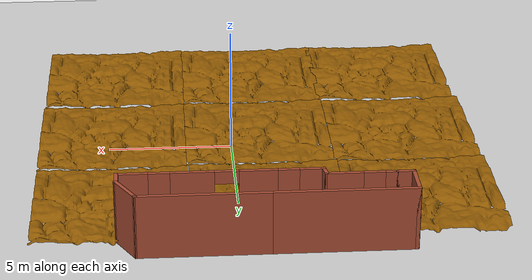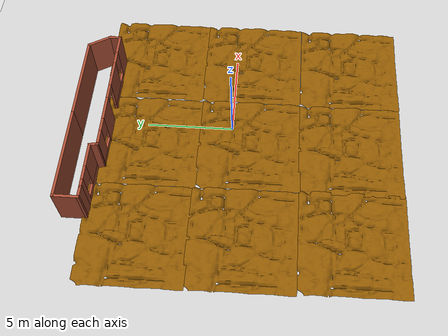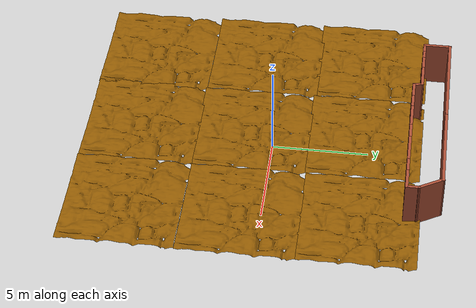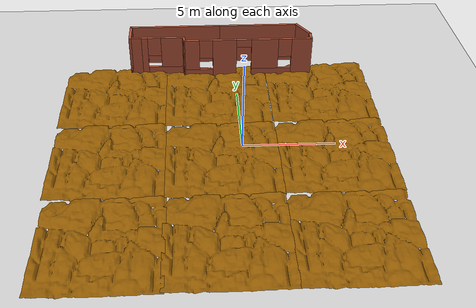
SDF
<sdf version="1.6">
 <world name="default">
  <light name="sun" type="directional">
   <pose>0 0 10 0 -0 0</pose>
   <diffuse>0.8 0.8 0.8 1</diffuse>
   <specular>0.2 0.2 0.2 1</specular>
   <attenuation>
    <range>1000</range>
    <constant>0.9</constant>
    <linear>0.01</linear>
    <quadratic>0.001</quadratic>
   </attenuation>
   <direction>-0.5 0.1 -0.9</direction>
  </light>
  <model name="ground_plane">
   <static>1</static>
   <link name="link">
    <collision name="collision">
     <geometry><plane><normal>0 0 1</normal><size>100 100</size></plane></geometry>
     <surface>
      <contact><collide_bitmask>65535</collide_bitmask></contact>
      <friction><ode><mu>100</mu><mu2>50</mu2></ode></friction>
     </surface>
    </collision>
    <visual name="visual">
     <cast_shadows>0</cast_shadows>
     <geometry><plane><normal>0 0 1</normal><size>100 100</size></plane></geometry>
     <material>
      <script><uri>file://media/materials/scripts/gazebo.material</uri><name>Gazebo/Grey</name></script>
     </material>
    </visual>
   </link>
  </model>
  <gravity>0 0 -9.8</gravity>
  <magnetic_field>6e-06 2.3e-05 -4.2e-05</magnetic_field>
  <atmosphere type="adiabatic"/>
  <physics name="default_physics" default="0" type="ode">
   <max_step_size>0.001</max_step_size>
   <real_time_factor>1</real_time_factor>
   <real_time_update_rate>1000</real_time_update_rate>
  </physics>
  <scene><ambient>0.4 0.4 0.4 1</ambient><background>0.7 0.7 0.7 1</background><shadows>1</shadows></scene>
  <audio><device>default</device></audio>
  <spherical_coordinates>
   <surface_model>EARTH_WGS84</surface_model>
   <latitude_deg>0</latitude_deg>
   <longitude_deg>0</longitude_deg>
   <elevation>0</elevation>
   <heading_deg>0</heading_deg>
  </spherical_coordinates>
  <model name="piedra_prueba_5_0">
   <link name="link_0">
    <inertial>
     <mass>1</mass>
     <inertia>
      <ixx>0.166667</ixx>
      <ixy>0</ixy>
      <ixz>0</ixz>
      <iyy>0.166667</iyy>
      <iyz>0</iyz>
      <izz>0.166667</izz>
     </inertia>
    </inertial>
    <pose>0.000504 0 0.1 0 -0 0</pose>
    <gravity>0</gravity>
    <self_collide>1</self_collide>
    <visual name="visual">
     <pose>0 0 0 1.57 -0 0</pose>
     <geometry>
      <mesh>
       <uri>/home/christyan/catkin_ws_cpr/src/modelos_stl_plantas/roca2.stl</uri>
       <scale>0.01 0.01 0.01</scale>
      </mesh>
     </geometry>
     <material>
      <lighting>1</lighting>
      <script><uri>file://media/materials/scripts/gazebo.material</uri><name>Gazebo/Grey</name></script>
      <shader type="vertex"><normal_map>__default__</normal_map></shader>
      <ambient>0.561 0.349 0.008 1</ambient>
      <diffuse>0.7 0.7 0.7 1</diffuse>
      <specular>0.01 0.01 0.01 1</specular>
      <emissive>0 0 0 1</emissive>
     </material>
    </visual>
    <collision name="collision">
     <max_contacts>1</max_contacts>
     <pose>0 0 0.1 1.57 -0 0</pose>
     <geometry>
      <mesh>
       <uri>/home/christyan/catkin_ws_cpr/src/modelos_stl_plantas/roca2.stl</uri>
       <scale>0.01 0.01 0.01</scale>
      </mesh>
     </geometry>
     <surface>
      <friction>
       <ode><mu>1</mu><mu2>1</mu2><fdir1>0 0 0</fdir1><slip1>0</slip1><slip2>0</slip2></ode>
       <torsional>
        <coefficient>1</coefficient>
        <patch_radius>0</patch_radius>
        <surface_radius>0</surface_radius>
        <use_patch_radius>1</use_patch_radius>
        <ode><slip>0</slip></ode>
       </torsional>
      </friction>
      <bounce><restitution_coefficient>0</restitution_coefficient><threshold>1e+06</threshold></bounce>
      <contact>
       <collide_without_contact>1</collide_without_contact>
       <collide_without_contact_bitmask>1</collide_without_contact_bitmask>
       <collide_bitmask>1</collide_bitmask>
       <ode>
        <soft_cfm>0</soft_cfm>
        <soft_erp>0.2</soft_erp>
        <kp>1e+10</kp>
        <kd>1</kd>
        <max_vel>0</max_vel>
        <min_depth>0</min_depth>
       </ode>
       <bullet>
        <split_impulse>1</split_impulse>
        <split_impulse_penetration_threshold>-0.01</split_impulse_penetration_threshold>
        <soft_cfm>0</soft_cfm>
        <soft_erp>0.2</soft_erp>
        <kp>1e+10</kp>
        <kd>1</kd>
       </bullet>
      </contact>
     </surface>
    </collision>
   </link>
   <static>0</static>
   <pose>-6.96398 -7.04107 0 0 -0 0</pose>
  </model>
  <model name="piedra_prueba_5_0_clone">
   <link name="link_0">
    <inertial>
     <mass>1</mass>
     <inertia>
      <ixx>0.166667</ixx>
      <ixy>0</ixy>
      <ixz>0</ixz>
      <iyy>0.166667</iyy>
      <iyz>0</iyz>
      <izz>0.166667</izz>
     </inertia>
    </inertial>
    <pose>0.000504 0 0.1 0 -0 0</pose>
    <gravity>0</gravity>
    <self_collide>1</self_collide>
    <visual name="visual">
     <pose>0 0 0 1.57 -0 0</pose>
     <geometry>
      <mesh>
       <uri>/home/christyan/catkin_ws_cpr/src/modelos_stl_plantas/roca2.stl</uri>
       <scale>0.01 0.01 0.01</scale>
      </mesh>
     </geometry>
     <material>
      <lighting>1</lighting>
      <script><uri>file://media/materials/scripts/gazebo.material</uri><name>Gazebo/Grey</name></script>
      <shader type="vertex"><normal_map>__default__</normal_map></shader>
      <ambient>0.561 0.349 0.008 1</ambient>
      <diffuse>0.7 0.7 0.7 1</diffuse>
      <specular>0.01 0.01 0.01 1</specular>
      <emissive>0 0 0 1</emissive>
     </material>
    </visual>
    <collision name="collision">
     <max_contacts>1</max_contacts>
     <pose>0 0 0.1 1.57 -0 0</pose>
     <geometry>
      <mesh>
       <uri>/home/christyan/catkin_ws_cpr/src/modelos_stl_plantas/roca2.stl</uri>
       <scale>0.01 0.01 0.01</scale>
      </mesh>
     </geometry>
     <surface>
      <friction>
       <ode><mu>1</mu><mu2>1</mu2><fdir1>0 0 0</fdir1><slip1>0</slip1><slip2>0</slip2></ode>
       <torsional>
        <coefficient>1</coefficient>
        <patch_radius>0</patch_radius>
        <surface_radius>0</surface_radius>
        <use_patch_radius>1</use_patch_radius>
        <ode><slip>0</slip></ode>
       </torsional>
      </friction>
      <bounce><restitution_coefficient>0</restitution_coefficient><threshold>1e+06</threshold></bounce>
      <contact>
       <collide_without_contact>1</collide_without_contact>
       <collide_without_contact_bitmask>1</collide_without_contact_bitmask>
       <collide_bitmask>1</collide_bitmask>
       <ode>
        <soft_cfm>0</soft_cfm>
        <soft_erp>0.2</soft_erp>
        <kp>1e+10</kp>
        <kd>1</kd>
        <max_vel>0</max_vel>
        <min_depth>0</min_depth>
       </ode>
       <bullet>
        <split_impulse>1</split_impulse>
        <split_impulse_penetration_threshold>-0.01</split_impulse_penetration_threshold>
        <soft_cfm>0</soft_cfm>
        <soft_erp>0.2</soft_erp>
        <kp>1e+10</kp>
        <kd>1</kd>
       </bullet>
      </contact>
     </surface>
    </collision>
   </link>
   <static>0</static>
   <pose>-1.1356 -7.00104 0 0 -0 0</pose>
  </model>
  <model name="piedra_prueba_5_0_clone_0">
   <link name="link_0">
    <inertial>
     <mass>1</mass>
     <inertia>
      <ixx>0.166667</ixx>
      <ixy>0</ixy>
      <ixz>0</ixz>
      <iyy>0.166667</iyy>
      <iyz>0</iyz>
      <izz>0.166667</izz>
     </inertia>
    </inertial>
    <pose>0.000504 0 0.1 0 -0 0</pose>
    <gravity>0</gravity>
    <self_collide>1</self_collide>
    <visual name="visual">
     <pose>0 0 0 1.57 -0 0</pose>
     <geometry>
      <mesh>
       <uri>/home/christyan/catkin_ws_cpr/src/modelos_stl_plantas/roca2.stl</uri>
       <scale>0.01 0.01 0.01</scale>
      </mesh>
     </geometry>
     <material>
      <lighting>1</lighting>
      <script><uri>file://media/materials/scripts/gazebo.material</uri><name>Gazebo/Grey</name></script>
      <shader type="vertex"><normal_map>__default__</normal_map></shader>
      <ambient>0.561 0.349 0.008 1</ambient>
      <diffuse>0.7 0.7 0.7 1</diffuse>
      <specular>0.01 0.01 0.01 1</specular>
      <emissive>0 0 0 1</emissive>
     </material>
    </visual>
    <collision name="collision">
     <max_contacts>1</max_contacts>
     <pose>0 0 0.1 1.57 -0 0</pose>
     <geometry>
      <mesh>
       <uri>/home/christyan/catkin_ws_cpr/src/modelos_stl_plantas/roca2.stl</uri>
       <scale>0.01 0.01 0.01</scale>
      </mesh>
     </geometry>
     <surface>
      <friction>
       <ode><mu>1</mu><mu2>1</mu2><fdir1>0 0 0</fdir1><slip1>0</slip1><slip2>0</slip2></ode>
       <torsional>
        <coefficient>1</coefficient>
        <patch_radius>0</patch_radius>
        <surface_radius>0</surface_radius>
        <use_patch_radius>1</use_patch_radius>
        <ode><slip>0</slip></ode>
       </torsional>
      </friction>
      <bounce><restitution_coefficient>0</restitution_coefficient><threshold>1e+06</threshold></bounce>
      <contact>
       <collide_without_contact>1</collide_without_contact>
       <collide_without_contact_bitmask>1</collide_without_contact_bitmask>
       <collide_bitmask>1</collide_bitmask>
       <ode>
        <soft_cfm>0</soft_cfm>
        <soft_erp>0.2</soft_erp>
        <kp>1e+10</kp>
        <kd>1</kd>
        <max_vel>0</max_vel>
        <min_depth>0</min_depth>
       </ode>
       <bullet>
        <split_impulse>1</split_impulse>
        <split_impulse_penetration_threshold>-0.01</split_impulse_penetration_threshold>
        <soft_cfm>0</soft_cfm>
        <soft_erp>0.2</soft_erp>
        <kp>1e+10</kp>
        <kd>1</kd>
       </bullet>
      </contact>
     </surface>
    </collision>
   </link>
   <static>0</static>
   <pose>4.83163 -7.01899 0 0 -0 0</pose>
  </model>
  <model name="piedra_prueba_5_0_clone_1">
   <link name="link_0">
    <inertial>
     <mass>1</mass>
     <inertia>
      <ixx>0.166667</ixx>
      <ixy>0</ixy>
      <ixz>0</ixz>
      <iyy>0.166667</iyy>
      <iyz>0</iyz>
      <izz>0.166667</izz>
     </inertia>
    </inertial>
    <pose>0.000504 0 0.1 0 -0 0</pose>
    <gravity>0</gravity>
    <self_collide>1</self_collide>
    <visual name="visual">
     <pose>0 0 0 1.57 -0 0</pose>
     <geometry>
      <mesh>
       <uri>/home/christyan/catkin_ws_cpr/src/modelos_stl_plantas/roca2.stl</uri>
       <scale>0.01 0.01 0.01</scale>
      </mesh>
     </geometry>
     <material>
      <lighting>1</lighting>
      <script><uri>file://media/materials/scripts/gazebo.material</uri><name>Gazebo/Grey</name></script>
      <shader type="vertex"><normal_map>__default__</normal_map></shader>
      <ambient>0.561 0.349 0.008 1</ambient>
      <diffuse>0.7 0.7 0.7 1</diffuse>
      <specular>0.01 0.01 0.01 1</specular>
      <emissive>0 0 0 1</emissive>
     </material>
    </visual>
    <collision name="collision">
     <max_contacts>1</max_contacts>
     <pose>0 0 0.1 1.57 -0 0</pose>
     <geometry>
      <mesh>
       <uri>/home/christyan/catkin_ws_cpr/src/modelos_stl_plantas/roca2.stl</uri>
       <scale>0.01 0.01 0.01</scale>
      </mesh>
     </geometry>
     <surface>
      <friction>
       <ode><mu>1</mu><mu2>1</mu2><fdir1>0 0 0</fdir1><slip1>0</slip1><slip2>0</slip2></ode>
       <torsional>
        <coefficient>1</coefficient>
        <patch_radius>0</patch_radius>
        <surface_radius>0</surface_radius>
        <use_patch_radius>1</use_patch_radius>
        <ode><slip>0</slip></ode>
       </torsional>
      </friction>
      <bounce><restitution_coefficient>0</restitution_coefficient><threshold>1e+06</threshold></bounce>
      <contact>
       <collide_without_contact>1</collide_without_contact>
       <collide_without_contact_bitmask>1</collide_without_contact_bitmask>
       <collide_bitmask>1</collide_bitmask>
       <ode>
        <soft_cfm>0</soft_cfm>
        <soft_erp>0.2</soft_erp>
        <kp>1e+10</kp>
        <kd>1</kd>
        <max_vel>0</max_vel>
        <min_depth>0</min_depth>
       </ode>
       <bullet>
        <split_impulse>1</split_impulse>
        <split_impulse_penetration_threshold>-0.01</split_impulse_penetration_threshold>
        <soft_cfm>0</soft_cfm>
        <soft_erp>0.2</soft_erp>
        <kp>1e+10</kp>
        <kd>1</kd>
       </bullet>
      </contact>
     </surface>
    </collision>
   </link>
   <static>0</static>
   <pose>4.88007 -1.00253 0 0 -0 0</pose>
  </model>
  <model name="piedra_prueba_5_0_clone_2">
   <link name="link_0">
    <inertial>
     <mass>1</mass>
     <inertia>
      <ixx>0.166667</ixx>
      <ixy>0</ixy>
      <ixz>0</ixz>
      <iyy>0.166667</iyy>
      <iyz>0</iyz>
      <izz>0.166667</izz>
     </inertia>
    </inertial>
    <pose>0.000504 0 0.1 0 -0 0</pose>
    <gravity>0</gravity>
    <self_collide>1</self_collide>
    <visual name="visual">
     <pose>0 0 0 1.57 -0 0</pose>
     <geometry>
      <mesh>
       <uri>/home/christyan/catkin_ws_cpr/src/modelos_stl_plantas/roca2.stl</uri>
       <scale>0.01 0.01 0.01</scale>
      </mesh>
     </geometry>
     <material>
      <lighting>1</lighting>
      <script><uri>file://media/materials/scripts/gazebo.material</uri><name>Gazebo/Grey</name></script>
      <shader type="vertex"><normal_map>__default__</normal_map></shader>
      <ambient>0.561 0.349 0.008 1</ambient>
      <diffuse>0.7 0.7 0.7 1</diffuse>
      <specular>0.01 0.01 0.01 1</specular>
      <emissive>0 0 0 1</emissive>
     </material>
    </visual>
    <collision name="collision">
     <max_contacts>1</max_contacts>
     <pose>0 0 0.1 1.57 -0 0</pose>
     <geometry>
      <mesh>
       <uri>/home/christyan/catkin_ws_cpr/src/modelos_stl_plantas/roca2.stl</uri>
       <scale>0.01 0.01 0.01</scale>
      </mesh>
     </geometry>
     <surface>
      <friction>
       <ode><mu>1</mu><mu2>1</mu2><fdir1>0 0 0</fdir1><slip1>0</slip1><slip2>0</slip2></ode>
       <torsional>
        <coefficient>1</coefficient>
        <patch_radius>0</patch_radius>
        <surface_radius>0</surface_radius>
        <use_patch_radius>1</use_patch_radius>
        <ode><slip>0</slip></ode>
       </torsional>
      </friction>
      <bounce><restitution_coefficient>0</restitution_coefficient><threshold>1e+06</threshold></bounce>
      <contact>
       <collide_without_contact>1</collide_without_contact>
       <collide_without_contact_bitmask>1</collide_without_contact_bitmask>
       <collide_bitmask>1</collide_bitmask>
       <ode>
        <soft_cfm>0</soft_cfm>
        <soft_erp>0.2</soft_erp>
        <kp>1e+10</kp>
        <kd>1</kd>
        <max_vel>0</max_vel>
        <min_depth>0</min_depth>
       </ode>
       <bullet>
        <split_impulse>1</split_impulse>
        <split_impulse_penetration_threshold>-0.01</split_impulse_penetration_threshold>
        <soft_cfm>0</soft_cfm>
        <soft_erp>0.2</soft_erp>
        <kp>1e+10</kp>
        <kd>1</kd>
       </bullet>
      </contact>
     </surface>
    </collision>
   </link>
   <static>0</static>
   <pose>-1.10542 -1.10861 0 0 -0 0</pose>
  </model>
  <model name="piedra_prueba_5_0_clone_3">
   <link name="link_0">
    <inertial>
     <mass>1</mass>
     <inertia>
      <ixx>0.166667</ixx>
      <ixy>0</ixy>
      <ixz>0</ixz>
      <iyy>0.166667</iyy>
      <iyz>0</iyz>
      <izz>0.166667</izz>
     </inertia>
    </inertial>
    <pose>0.000504 0 0.1 0 -0 0</pose>
    <gravity>0</gravity>
    <self_collide>1</self_collide>
    <visual name="visual">
     <pose>0 0 0 1.57 -0 0</pose>
     <geometry>
      <mesh>
       <uri>/home/christyan/catkin_ws_cpr/src/modelos_stl_plantas/roca2.stl</uri>
       <scale>0.01 0.01 0.01</scale>
      </mesh>
     </geometry>
     <material>
      <lighting>1</lighting>
      <script><uri>file://media/materials/scripts/gazebo.material</uri><name>Gazebo/Grey</name></script>
      <shader type="vertex"><normal_map>__default__</normal_map></shader>
      <ambient>0.561 0.349 0.008 1</ambient>
      <diffuse>0.7 0.7 0.7 1</diffuse>
      <specular>0.01 0.01 0.01 1</specular>
      <emissive>0 0 0 1</emissive>
     </material>
    </visual>
    <collision name="collision">
     <max_contacts>1</max_contacts>
     <pose>0 0 0.1 1.57 -0 0</pose>
     <geometry>
      <mesh>
       <uri>/home/christyan/catkin_ws_cpr/src/modelos_stl_plantas/roca2.stl</uri>
       <scale>0.01 0.01 0.01</scale>
      </mesh>
     </geometry>
     <surface>
      <friction>
       <ode><mu>1</mu><mu2>1</mu2><fdir1>0 0 0</fdir1><slip1>0</slip1><slip2>0</slip2></ode>
       <torsional>
        <coefficient>1</coefficient>
        <patch_radius>0</patch_radius>
        <surface_radius>0</surface_radius>
        <use_patch_radius>1</use_patch_radius>
        <ode><slip>0</slip></ode>
       </torsional>
      </friction>
      <bounce><restitution_coefficient>0</restitution_coefficient><threshold>1e+06</threshold></bounce>
      <contact>
       <collide_without_contact>1</collide_without_contact>
       <collide_without_contact_bitmask>1</collide_without_contact_bitmask>
       <collide_bitmask>1</collide_bitmask>
       <ode>
        <soft_cfm>0</soft_cfm>
        <soft_erp>0.2</soft_erp>
        <kp>1e+10</kp>
        <kd>1</kd>
        <max_vel>0</max_vel>
        <min_depth>0</min_depth>
       </ode>
       <bullet>
        <split_impulse>1</split_impulse>
        <split_impulse_penetration_threshold>-0.01</split_impulse_penetration_threshold>
        <soft_cfm>0</soft_cfm>
        <soft_erp>0.2</soft_erp>
        <kp>1e+10</kp>
        <kd>1</kd>
       </bullet>
      </contact>
     </surface>
    </collision>
   </link>
   <static>0</static>
   <pose>-7.10092 -1.04953 0 0 -0 0</pose>
  </model>
  <model name="piedra_prueba_5_0_clone_4">
   <link name="link_0">
    <inertial>
     <mass>1</mass>
     <inertia>
      <ixx>0.166667</ixx>
      <ixy>0</ixy>
      <ixz>0</ixz>
      <iyy>0.166667</iyy>
      <iyz>0</iyz>
      <izz>0.166667</izz>
     </inertia>
    </inertial>
    <pose>0.000504 0 0.1 0 -0 0</pose>
    <gravity>0</gravity>
    <self_collide>1</self_collide>
    <visual name="visual">
     <pose>0 0 0 1.57 -0 0</pose>
     <geometry>
      <mesh>
       <uri>/home/christyan/catkin_ws_cpr/src/modelos_stl_plantas/roca2.stl</uri>
       <scale>0.01 0.01 0.01</scale>
      </mesh>
     </geometry>
     <material>
      <lighting>1</lighting>
      <script><uri>file://media/materials/scripts/gazebo.material</uri><name>Gazebo/Grey</name></script>
      <shader type="vertex"><normal_map>__default__</normal_map></shader>
      <ambient>0.561 0.349 0.008 1</ambient>
      <diffuse>0.7 0.7 0.7 1</diffuse>
      <specular>0.01 0.01 0.01 1</specular>
      <emissive>0 0 0 1</emissive>
     </material>
    </visual>
    <collision name="collision">
     <max_contacts>1</max_contacts>
     <pose>0 0 0.1 1.57 -0 0</pose>
     <geometry>
      <mesh>
       <uri>/home/christyan/catkin_ws_cpr/src/modelos_stl_plantas/roca2.stl</uri>
       <scale>0.01 0.01 0.01</scale>
      </mesh>
     </geometry>
     <surface>
      <friction>
       <ode><mu>1</mu><mu2>1</mu2><fdir1>0 0 0</fdir1><slip1>0</slip1><slip2>0</slip2></ode>
       <torsional>
        <coefficient>1</coefficient>
        <patch_radius>0</patch_radius>
        <surface_radius>0</surface_radius>
        <use_patch_radius>1</use_patch_radius>
        <ode><slip>0</slip></ode>
       </torsional>
      </friction>
      <bounce><restitution_coefficient>0</restitution_coefficient><threshold>1e+06</threshold></bounce>
      <contact>
       <collide_without_contact>1</collide_without_contact>
       <collide_without_contact_bitmask>1</collide_without_contact_bitmask>
       <collide_bitmask>1</collide_bitmask>
       <ode>
        <soft_cfm>0</soft_cfm>
        <soft_erp>0.2</soft_erp>
        <kp>1e+10</kp>
        <kd>1</kd>
        <max_vel>0</max_vel>
        <min_depth>0</min_depth>
       </ode>
       <bullet>
        <split_impulse>1</split_impulse>
        <split_impulse_penetration_threshold>-0.01</split_impulse_penetration_threshold>
        <soft_cfm>0</soft_cfm>
        <soft_erp>0.2</soft_erp>
        <kp>1e+10</kp>
        <kd>1</kd>
       </bullet>
      </contact>
     </surface>
    </collision>
   </link>
   <static>0</static>
   <pose>-7.16376 4.79556 0 0 -0 0</pose>
  </model>
  <model name="piedra_prueba_5_0_clone_5">
   <link name="link_0">
    <inertial>
     <mass>1</mass>
     <inertia>
      <ixx>0.166667</ixx>
      <ixy>0</ixy>
      <ixz>0</ixz>
      <iyy>0.166667</iyy>
      <iyz>0</iyz>
      <izz>0.166667</izz>
     </inertia>
    </inertial>
    <pose>0.000504 0 0.1 0 -0 0</pose>
    <gravity>0</gravity>
    <self_collide>1</self_collide>
    <visual name="visual">
     <pose>0 0 0 1.57 -0 0</pose>
     <geometry>
      <mesh>
       <uri>/home/christyan/catkin_ws_cpr/src/modelos_stl_plantas/roca2.stl</uri>
       <scale>0.01 0.01 0.01</scale>
      </mesh>
     </geometry>
     <material>
      <lighting>1</lighting>
      <script><uri>file://media/materials/scripts/gazebo.material</uri><name>Gazebo/Grey</name></script>
      <shader type="vertex"><normal_map>__default__</normal_map></shader>
      <ambient>0.561 0.349 0.008 1</ambient>
      <diffuse>0.7 0.7 0.7 1</diffuse>
      <specular>0.01 0.01 0.01 1</specular>
      <emissive>0 0 0 1</emissive>
     </material>
    </visual>
    <collision name="collision">
     <max_contacts>1</max_contacts>
     <pose>0 0 0.1 1.57 -0 0</pose>
     <geometry>
      <mesh>
       <uri>/home/christyan/catkin_ws_cpr/src/modelos_stl_plantas/roca2.stl</uri>
       <scale>0.01 0.01 0.01</scale>
      </mesh>
     </geometry>
     <surface>
      <friction>
       <ode><mu>1</mu><mu2>1</mu2><fdir1>0 0 0</fdir1><slip1>0</slip1><slip2>0</slip2></ode>
       <torsional>
        <coefficient>1</coefficient>
        <patch_radius>0</patch_radius>
        <surface_radius>0</surface_radius>
        <use_patch_radius>1</use_patch_radius>
        <ode><slip>0</slip></ode>
       </torsional>
      </friction>
      <bounce><restitution_coefficient>0</restitution_coefficient><threshold>1e+06</threshold></bounce>
      <contact>
       <collide_without_contact>1</collide_without_contact>
       <collide_without_contact_bitmask>1</collide_without_contact_bitmask>
       <collide_bitmask>1</collide_bitmask>
       <ode>
        <soft_cfm>0</soft_cfm>
        <soft_erp>0.2</soft_erp>
        <kp>1e+10</kp>
        <kd>1</kd>
        <max_vel>0</max_vel>
        <min_depth>0</min_depth>
       </ode>
       <bullet>
        <split_impulse>1</split_impulse>
        <split_impulse_penetration_threshold>-0.01</split_impulse_penetration_threshold>
        <soft_cfm>0</soft_cfm>
        <soft_erp>0.2</soft_erp>
        <kp>1e+10</kp>
        <kd>1</kd>
       </bullet>
      </contact>
     </surface>
    </collision>
   </link>
   <static>0</static>
   <pose>-1.17677 4.79048 0 0 -0 0</pose>
  </model>
  <model name="piedra_prueba_5_0_clone_6">
   <link name="link_0">
    <inertial>
     <mass>1</mass>
     <inertia>
      <ixx>0.166667</ixx>
      <ixy>0</ixy>
      <ixz>0</ixz>
      <iyy>0.166667</iyy>
      <iyz>0</iyz>
      <izz>0.166667</izz>
     </inertia>
    </inertial>
    <pose>0.000504 0 0.1 0 -0 0</pose>
    <gravity>0</gravity>
    <self_collide>1</self_collide>
    <visual name="visual">
     <pose>0 0 0 1.57 -0 0</pose>
     <geometry>
      <mesh>
       <uri>/home/christyan/catkin_ws_cpr/src/modelos_stl_plantas/roca2.stl</uri>
       <scale>0.01 0.01 0.01</scale>
      </mesh>
     </geometry>
     <material>
      <lighting>1</lighting>
      <script><uri>file://media/materials/scripts/gazebo.material</uri><name>Gazebo/Grey</name></script>
      <shader type="vertex"><normal_map>__default__</normal_map></shader>
      <ambient>0.561 0.349 0.008 1</ambient>
      <diffuse>0.7 0.7 0.7 1</diffuse>
      <specular>0.01 0.01 0.01 1</specular>
      <emissive>0 0 0 1</emissive>
     </material>
    </visual>
    <collision name="collision">
     <max_contacts>1</max_contacts>
     <pose>0 0 0.1 1.57 -0 0</pose>
     <geometry>
      <mesh>
       <uri>/home/christyan/catkin_ws_cpr/src/modelos_stl_plantas/roca2.stl</uri>
       <scale>0.01 0.01 0.01</scale>
      </mesh>
     </geometry>
     <surface>
      <friction>
       <ode><mu>1</mu><mu2>1</mu2><fdir1>0 0 0</fdir1><slip1>0</slip1><slip2>0</slip2></ode>
       <torsional>
        <coefficient>1</coefficient>
        <patch_radius>0</patch_radius>
        <surface_radius>0</surface_radius>
        <use_patch_radius>1</use_patch_radius>
        <ode><slip>0</slip></ode>
       </torsional>
      </friction>
      <bounce><restitution_coefficient>0</restitution_coefficient><threshold>1e+06</threshold></bounce>
      <contact>
       <collide_without_contact>1</collide_without_contact>
       <collide_without_contact_bitmask>1</collide_without_contact_bitmask>
       <collide_bitmask>1</collide_bitmask>
       <ode>
        <soft_cfm>0</soft_cfm>
        <soft_erp>0.2</soft_erp>
        <kp>1e+10</kp>
        <kd>1</kd>
        <max_vel>0</max_vel>
        <min_depth>0</min_depth>
       </ode>
       <bullet>
        <split_impulse>1</split_impulse>
        <split_impulse_penetration_threshold>-0.01</split_impulse_penetration_threshold>
        <soft_cfm>0</soft_cfm>
        <soft_erp>0.2</soft_erp>
        <kp>1e+10</kp>
        <kd>1</kd>
       </bullet>
      </contact>
     </surface>
    </collision>
   </link>
   <static>0</static>
   <pose>4.86597 4.94243 0 0 -0 0</pose>
  </model>
  <model name="casa_fondo">
   <pose>-0.85961 8.02225 0 0 -0 0</pose>
   <link name="Wall_10">
    <collision name="Wall_10_Collision">
     <geometry><box><size>1.5 0.15 2.5</size></box></geometry>
     <pose>0 0 1.25 0 -0 0</pose>
    </collision>
    <visual name="Wall_10_Visual">
     <pose>0 0 1.25 0 -0 0</pose>
     <geometry><box><size>1.5 0.15 2.5</size></box></geometry>
     <material>
      <script><uri>file://media/materials/scripts/gazebo.material</uri><name>Gazebo/Bricks</name></script>
      <ambient>1 1 1 1</ambient>
     </material>
     <meta><layer>0</layer></meta>
    </visual>
    <pose>5.08627 0.292293 0 0 -0 -1.0472</pose>
   </link>
   <link name="Wall_11">
    <collision name="Wall_11_Collision">
     <geometry><box><size>0.75 0.15 2.5</size></box></geometry>
     <pose>0 0 1.25 0 -0 0</pose>
    </collision>
    <visual name="Wall_11_Visual">
     <pose>0 0 1.25 0 -0 0</pose>
     <geometry><box><size>0.75 0.15 2.5</size></box></geometry>
     <material>
      <script><uri>file://media/materials/scripts/gazebo.material</uri><name>Gazebo/Bricks</name></script>
      <ambient>1 1 1 1</ambient>
     </material>
     <meta><layer>0</layer></meta>
    </visual>
    <pose>5.42377 -0.592274 0 0 -0 -1.5708</pose>
   </link>
   <link name="Wall_12">
    <pose>1.62377 -0.892274 0 0 -0 3.14159</pose>
    <visual name="Wall_12_Visual_0">
     <pose>-3.25913 0 1.25 0 -0 0</pose>
     <geometry><box><size>1.23173 0.15 2.5</size></box></geometry>
     <material>
      <script><uri>file://media/materials/scripts/gazebo.material</uri><name>Gazebo/Bricks</name></script>
      <ambient>1 1 1 1</ambient>
     </material>
     <meta><layer>0</layer></meta>
    </visual>
    <collision name="Wall_12_Collision_0">
     <geometry><box><size>1.23173 0.15 2.5</size></box></geometry>
     <pose>-3.25913 0 1.25 0 -0 0</pose>
    </collision>
    <visual name="Wall_12_Visual_1">
     <pose>1.40052 0 1.25 0 -0 0</pose>
     <geometry><box><size>1.43399 0.15 2.5</size></box></geometry>
     <material>
      <script><uri>file://media/materials/scripts/gazebo.material</uri><name>Gazebo/Bricks</name></script>
      <ambient>1 1 1 1</ambient>
     </material>
     <meta><layer>0</layer></meta>
    </visual>
    <collision name="Wall_12_Collision_1">
     <geometry><box><size>1.43399 0.15 2.5</size></box></geometry>
     <pose>1.40052 0 1.25 0 -0 0</pose>
    </collision>
    <visual name="Wall_12_Visual_2">
     <pose>-1.42987 0 0.25 0 -0 0</pose>
     <geometry><box><size>2.42679 0.15 0.5</size></box></geometry>
     <material>
      <script><uri>file://media/materials/scripts/gazebo.material</uri><name>Gazebo/Bricks</name></script>
      <ambient>1 1 1 1</ambient>
     </material>
     <meta><layer>0</layer></meta>
    </visual>
    <collision name="Wall_12_Collision_2">
     <geometry><box><size>2.42679 0.15 0.5</size></box></geometry>
     <pose>-1.42987 0 0.25 0 -0 0</pose>
    </collision>
    <visual name="Wall_12_Visual_3">
     <pose>2.99626 0 0.25 0 -0 0</pose>
     <geometry><box><size>1.75749 0.15 0.5</size></box></geometry>
     <material>
      <script><uri>file://media/materials/scripts/gazebo.material</uri><name>Gazebo/Bricks</name></script>
      <ambient>1 1 1 1</ambient>
     </material>
     <meta><layer>0</layer></meta>
    </visual>
    <collision name="Wall_12_Collision_3">
     <geometry><box><size>1.75749 0.15 0.5</size></box></geometry>
     <pose>2.99626 0 0.25 0 -0 0</pose>
    </collision>
    <visual name="Wall_12_Visual_4">
     <pose>-1.02987 0 1.5 0 -0 0</pose>
     <geometry><box><size>1.62679 0.15 2</size></box></geometry>
     <material>
      <script><uri>file://media/materials/scripts/gazebo.material</uri><name>Gazebo/Bricks</name></script>
      <ambient>1 1 1 1</ambient>
     </material>
     <meta><layer>0</layer></meta>
    </visual>
    <collision name="Wall_12_Collision_4">
     <geometry><box><size>1.62679 0.15 2</size></box></geometry>
     <pose>-1.02987 0 1.5 0 -0 0</pose>
    </collision>
    <visual name="Wall_12_Visual_5">
     <pose>-1.02987 0 1.5 0 -0 0</pose>
     <geometry><box><size>1.62679 0.15 2</size></box></geometry>
     <material>
      <script><uri>file://media/materials/scripts/gazebo.material</uri><name>Gazebo/Bricks</name></script>
      <ambient>1 1 1 1</ambient>
     </material>
     <meta><layer>0</layer></meta>
    </visual>
    <collision name="Wall_12_Collision_5">
     <geometry><box><size>1.62679 0.15 2</size></box></geometry>
     <pose>-1.02987 0 1.5 0 -0 0</pose>
    </collision>
    <visual name="Wall_12_Visual_6">
     <pose>3.39626 0 1.5 0 -0 0</pose>
     <geometry><box><size>0.957489 0.15 2</size></box></geometry>
     <material>
      <script><uri>file://media/materials/scripts/gazebo.material</uri><name>Gazebo/Bricks</name></script>
      <ambient>1 1 1 1</ambient>
     </material>
     <meta><layer>0</layer></meta>
    </visual>
    <collision name="Wall_12_Collision_6">
     <geometry><box><size>0.957489 0.15 2</size></box></geometry>
     <pose>3.39626 0 1.5 0 -0 0</pose>
    </collision>
    <visual name="Wall_12_Visual_7">
     <pose>-2.24327 0 1.9 0 -0 0</pose>
     <geometry><box><size>0.8 0.15 1.2</size></box></geometry>
     <material>
      <script><uri>file://media/materials/scripts/gazebo.material</uri><name>Gazebo/Bricks</name></script>
      <ambient>1 1 1 1</ambient>
     </material>
     <meta><layer>0</layer></meta>
    </visual>
    <collision name="Wall_12_Collision_7">
     <geometry><box><size>0.8 0.15 1.2</size></box></geometry>
     <pose>-2.24327 0 1.9 0 -0 0</pose>
    </collision>
    <visual name="Wall_12_Visual_8">
     <pose>2.51751 0 1.9 0 -0 0</pose>
     <geometry><box><size>0.8 0.15 1.2</size></box></geometry>
     <material>
      <script><uri>file://media/materials/scripts/gazebo.material</uri><name>Gazebo/Bricks</name></script>
      <ambient>1 1 1 1</ambient>
     </material>
     <meta><layer>0</layer></meta>
    </visual>
    <collision name="Wall_12_Collision_8">
     <geometry><box><size>0.8 0.15 1.2</size></box></geometry>
     <pose>2.51751 0 1.9 0 -0 0</pose>
    </collision>
    <visual name="Wall_12_Visual_9">
     <pose>0.233524 0 2.25 0 -0 0</pose>
     <geometry><box><size>0.9 0.15 0.5</size></box></geometry>
     <material>
      <script><uri>file://media/materials/scripts/gazebo.material</uri><name>Gazebo/Bricks</name></script>
      <ambient>1 1 1 1</ambient>
     </material>
     <meta><layer>0</layer></meta>
    </visual>
    <collision name="Wall_12_Collision_9">
     <geometry><box><size>0.9 0.15 0.5</size></box></geometry>
     <pose>0.233524 0 2.25 0 -0 0</pose>
    </collision>
    <visual name="Wall_12_Visual_10">
     <pose>0.233524 0 2.25 0 -0 0</pose>
     <geometry><box><size>0.9 0.15 0.5</size></box></geometry>
     <material>
      <script><uri>file://media/materials/scripts/gazebo.material</uri><name>Gazebo/Bricks</name></script>
      <ambient>1 1 1 1</ambient>
     </material>
     <meta><layer>0</layer></meta>
    </visual>
    <collision name="Wall_12_Collision_10">
     <geometry><box><size>0.9 0.15 0.5</size></box></geometry>
     <pose>0.233524 0 2.25 0 -0 0</pose>
    </collision>
   </link>
   <link name="Wall_13">
    <collision name="Wall_13_Collision">
     <geometry><box><size>0.575792 0.15 2.5</size></box></geometry>
     <pose>0 0 1.25 0 -0 0</pose>
    </collision>
    <visual name="Wall_13_Visual">
     <pose>0 0 1.25 0 -0 0</pose>
     <geometry><box><size>0.575792 0.15 2.5</size></box></geometry>
     <material>
      <script><uri>file://media/materials/scripts/gazebo.material</uri><name>Gazebo/Bricks</name></script>
      <ambient>1 1 1 1</ambient>
     </material>
     <meta><layer>0</layer></meta>
    </visual>
    <pose>-2.21373 -0.682707 0 0 -0 1.74786</pose>
   </link>
   <link name="Wall_3">
    <pose>-3.55123 -0.47314 0 0 -0 0</pose>
    <visual name="Wall_3_Visual_0">
     <pose>-1.11602 0 1.25 0 -0 0</pose>
     <geometry><box><size>0.517962 0.15 2.5</size></box></geometry>
     <material>
      <script><uri>file://media/materials/scripts/gazebo.material</uri><name>Gazebo/Bricks</name></script>
      <ambient>1 1 1 1</ambient>
     </material>
     <meta><layer>0</layer></meta>
    </visual>
    <collision name="Wall_3_Collision_0">
     <geometry><box><size>0.517962 0.15 2.5</size></box></geometry>
     <pose>-1.11602 0 1.25 0 -0 0</pose>
    </collision>
    <visual name="Wall_3_Visual_1">
     <pose>0.258981 0 0.25 0 -0 0</pose>
     <geometry><box><size>2.23204 0.15 0.5</size></box></geometry>
     <material>
      <script><uri>file://media/materials/scripts/gazebo.material</uri><name>Gazebo/Bricks</name></script>
      <ambient>1 1 1 1</ambient>
     </material>
     <meta><layer>0</layer></meta>
    </visual>
    <collision name="Wall_3_Collision_1">
     <geometry><box><size>2.23204 0.15 0.5</size></box></geometry>
     <pose>0.258981 0 0.25 0 -0 0</pose>
    </collision>
    <visual name="Wall_3_Visual_2">
     <pose>0.658981 0 1.5 0 -0 0</pose>
     <geometry><box><size>1.43204 0.15 2</size></box></geometry>
     <material>
      <script><uri>file://media/materials/scripts/gazebo.material</uri><name>Gazebo/Bricks</name></script>
      <ambient>1 1 1 1</ambient>
     </material>
     <meta><layer>0</layer></meta>
    </visual>
    <collision name="Wall_3_Collision_2">
     <geometry><box><size>1.43204 0.15 2</size></box></geometry>
     <pose>0.658981 0 1.5 0 -0 0</pose>
    </collision>
    <visual name="Wall_3_Visual_3">
     <pose>-0.457038 0 1.9 0 -0 0</pose>
     <geometry><box><size>0.8 0.15 1.2</size></box></geometry>
     <material>
      <script><uri>file://media/materials/scripts/gazebo.material</uri><name>Gazebo/Bricks</name></script>
      <ambient>1 1 1 1</ambient>
     </material>
     <meta><layer>0</layer></meta>
    </visual>
    <collision name="Wall_3_Collision_3">
     <geometry><box><size>0.8 0.15 1.2</size></box></geometry>
     <pose>-0.457038 0 1.9 0 -0 0</pose>
    </collision>
   </link>
   <link name="Wall_5">
    <collision name="Wall_5_Collision">
     <geometry><box><size>0.75 0.15 2.5</size></box></geometry>
     <pose>0 0 1.25 0 -0 0</pose>
    </collision>
    <visual name="Wall_5_Visual">
     <pose>0 0 1.25 0 -0 0</pose>
     <geometry><box><size>0.75 0.15 2.5</size></box></geometry>
     <material>
      <script><uri>file://media/materials/scripts/gazebo.material</uri><name>Gazebo/Bricks</name></script>
      <ambient>1 1 1 1</ambient>
     </material>
     <meta><layer>0</layer></meta>
    </visual>
    <pose>-5.15123 -0.47314 0 0 -0 3.14159</pose>
   </link>
   <link name="Wall_6">
    <collision name="Wall_6_Collision">
     <geometry><box><size>1.5 0.15 2.5</size></box></geometry>
     <pose>0 0 1.25 0 -0 0</pose>
    </collision>
    <visual name="Wall_6_Visual">
     <pose>0 0 1.25 0 -0 0</pose>
     <geometry><box><size>1.5 0.15 2.5</size></box></geometry>
     <material>
      <script><uri>file://media/materials/scripts/gazebo.material</uri><name>Gazebo/Bricks</name></script>
      <ambient>1 1 1 1</ambient>
     </material>
     <meta><layer>0</layer></meta>
    </visual>
    <pose>-5.45123 0.20186 0 0 -0 1.5708</pose>
   </link>
   <link name="Wall_7">
    <collision name="Wall_7_Collision">
     <geometry><box><size>5.5 0.15 2.5</size></box></geometry>
     <pose>0 0 1.25 0 -0 0</pose>
    </collision>
    <visual name="Wall_7_Visual">
     <pose>0 0 1.25 0 -0 0</pose>
     <geometry><box><size>5.5 0.15 2.5</size></box></geometry>
     <material>
      <script><uri>file://media/materials/scripts/gazebo.material</uri><name>Gazebo/Bricks</name></script>
      <ambient>1 1 1 1</ambient>
     </material>
     <meta><layer>0</layer></meta>
    </visual>
    <pose>-2.77623 0.87686 0 0 -0 0</pose>
   </link>
   <link name="Wall_9">
    <collision name="Wall_9_Collision">
     <geometry><box><size>5 0.15 2.5</size></box></geometry>
     <pose>0 0 1.25 0 -0 0</pose>
    </collision>
    <visual name="Wall_9_Visual">
     <pose>0 0 1.25 0 -0 0</pose>
     <geometry><box><size>5 0.15 2.5</size></box></geometry>
     <material>
      <script><uri>file://media/materials/scripts/gazebo.material</uri><name>Gazebo/Bricks</name></script>
      <ambient>1 1 1 1</ambient>
     </material>
     <meta><layer>0</layer></meta>
    </visual>
    <pose>2.32377 0.87686 0 0 -0 0</pose>
   </link>
   <static>1</static>
  </model>
 </world>
</sdf>
